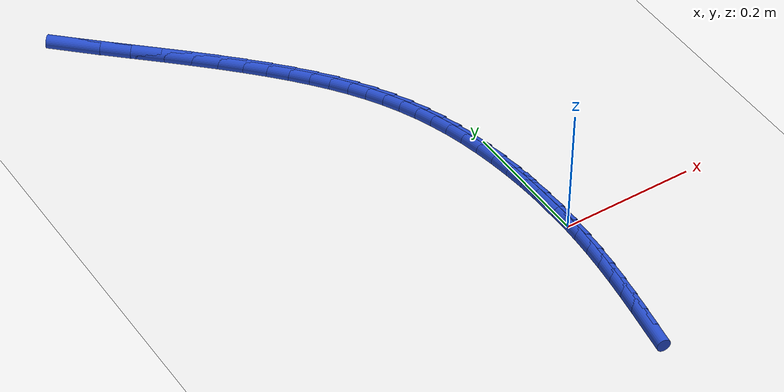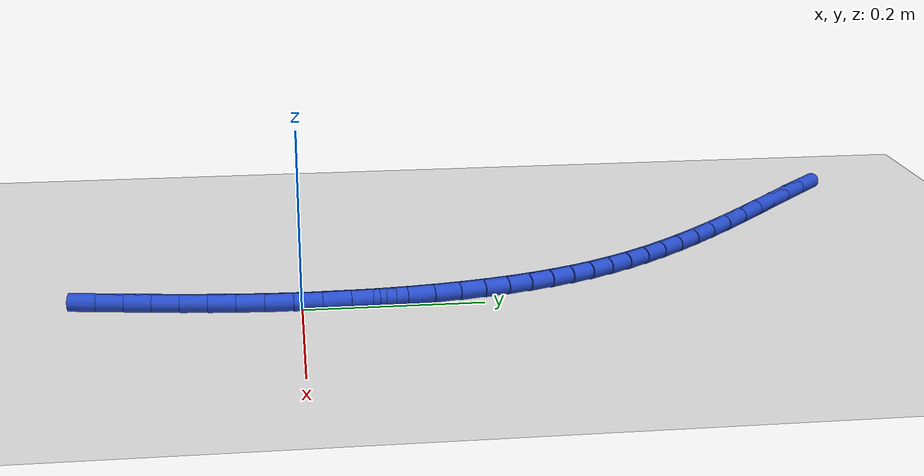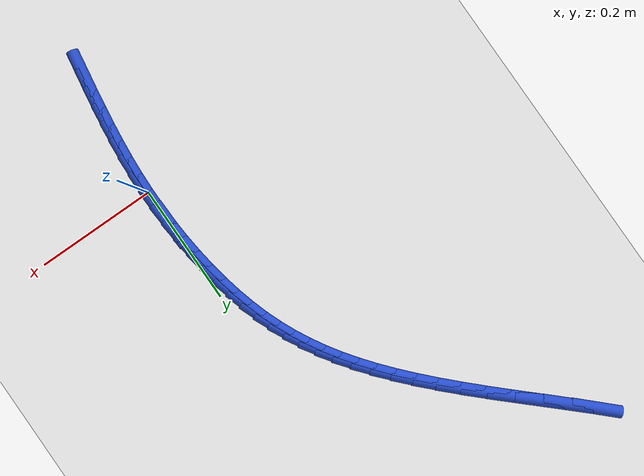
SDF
<sdf version="1.6">
 <world name="default">
  <model name="ground_plane">
   <static>1</static>
   <link name="link">
    <collision name="collision">
     <geometry><plane><normal>0 0 1</normal><size>100 100</size></plane></geometry>
     <surface><friction><ode><mu>100</mu><mu2>50</mu2></ode></friction></surface>
    </collision>
    <visual name="visual">
     <cast_shadows>0</cast_shadows>
     <geometry><plane><normal>0 0 1</normal><size>100 100</size></plane></geometry>
     <material>
      <script><uri>file://media/materials/scripts/gazebo.material</uri><name>Gazebo/WhiteGlow</name></script>
     </material>
    </visual>
   </link>
  </model>
  <model name="line">
   <link name="link_0">
    <pose>1.8648277366750676e-17 -6.938893903907228e-18 0.01 0 1.57 -1.5699351642614259</pose>
    <collision name="collision">
     <geometry><cylinder><radius>0.01</radius><length>0.08</length></cylinder></geometry>
    </collision>
    <visual name="visual">
     <material>
      <script><name>Gazebo/Blue</name><uri>file://media/materials/scripts/gazebo.material</uri></script>
     </material>
     <geometry><cylinder><radius>0.01</radius><length>0.08</length></cylinder></geometry>
    </visual>
   </link>
   <link name="link_1">
    <pose>-2.6558653135063657e-05 0.030840457564657316 0.01 0 1.57 -1.5355909908459235</pose>
    <collision name="collision">
     <geometry><cylinder><radius>0.01</radius><length>0.08</length></cylinder></geometry>
    </collision>
    <visual name="visual">
     <material>
      <script><name>Gazebo/Blue</name><uri>file://media/materials/scripts/gazebo.material</uri></script>
     </material>
     <geometry><cylinder><radius>0.01</radius><length>0.08</length></cylinder></geometry>
    </visual>
   </link>
   <link name="link_2">
    <pose>-0.0011189718829572883 0.061857399885012196 0.01 0 1.57 -1.5012671882661344</pose>
    <collision name="collision">
     <geometry><cylinder><radius>0.01</radius><length>0.08</length></cylinder></geometry>
    </collision>
    <visual name="visual">
     <material>
      <script><name>Gazebo/Blue</name><uri>file://media/materials/scripts/gazebo.material</uri></script>
     </material>
     <geometry><cylinder><radius>0.01</radius><length>0.08</length></cylinder></geometry>
    </visual>
   </link>
   <link name="link_3">
    <pose>-0.0032751421259902946 0.09281844215993389 0.01 0 1.57 -1.4662702780033963</pose>
    <collision name="collision">
     <geometry><cylinder><radius>0.01</radius><length>0.08</length></cylinder></geometry>
    </collision>
    <visual name="visual">
     <material>
      <script><name>Gazebo/Blue</name><uri>file://media/materials/scripts/gazebo.material</uri></script>
     </material>
     <geometry><cylinder><radius>0.01</radius><length>0.08</length></cylinder></geometry>
    </visual>
   </link>
   <link name="link_4">
    <pose>-0.0064929718187577284 0.12349119958829174 0.01 0 1.57 -1.4298760749262927</pose>
    <collision name="collision">
     <geometry><cylinder><radius>0.01</radius><length>0.08</length></cylinder></geometry>
    </collision>
    <visual name="visual">
     <material>
      <script><name>Gazebo/Blue</name><uri>file://media/materials/scripts/gazebo.material</uri></script>
     </material>
     <geometry><cylinder><radius>0.01</radius><length>0.08</length></cylinder></geometry>
    </visual>
   </link>
   <link name="link_5">
    <pose>-0.01077036339778322 0.15364328736895494 0.01 0 1.57 -1.3912860349757676</pose>
    <collision name="collision">
     <geometry><cylinder><radius>0.01</radius><length>0.08</length></cylinder></geometry>
    </collision>
    <visual name="visual">
     <material>
      <script><name>Gazebo/Blue</name><uri>file://media/materials/scripts/gazebo.material</uri></script>
     </material>
     <geometry><cylinder><radius>0.01</radius><length>0.08</length></cylinder></geometry>
    </visual>
   </link>
   <link name="link_6">
    <pose>-0.016105219299590426 0.18304232070079293 0.01 0 1.57 -1.3495768886296635</pose>
    <collision name="collision">
     <geometry><cylinder><radius>0.01</radius><length>0.08</length></cylinder></geometry>
    </collision>
    <visual name="visual">
     <material>
      <script><name>Gazebo/Blue</name><uri>file://media/materials/scripts/gazebo.material</uri></script>
     </material>
     <geometry><cylinder><radius>0.01</radius><length>0.08</length></cylinder></geometry>
    </visual>
   </link>
   <link name="link_7">
    <pose>-0.022495441960702977 0.21145591478267486 0.01 0 1.57 -1.3037687663299813</pose>
    <collision name="collision">
     <geometry><cylinder><radius>0.01</radius><length>0.08</length></cylinder></geometry>
    </collision>
    <visual name="visual">
     <material>
      <script><name>Gazebo/Blue</name><uri>file://media/materials/scripts/gazebo.material</uri></script>
     </material>
     <geometry><cylinder><radius>0.01</radius><length>0.08</length></cylinder></geometry>
    </visual>
   </link>
   <link name="link_8">
    <pose>-0.029947641604828736 0.23869740522114524 0.01 0 1.57 -1.2540484309064965</pose>
    <collision name="collision">
     <geometry><cylinder><radius>0.01</radius><length>0.08</length></cylinder></geometry>
    </collision>
    <visual name="visual">
     <material>
      <script><name>Gazebo/Blue</name><uri>file://media/materials/scripts/gazebo.material</uri></script>
     </material>
     <geometry><cylinder><radius>0.01</radius><length>0.08</length></cylinder></geometry>
    </visual>
   </link>
   <link name="link_9">
    <pose>-0.03851952678452823 0.264848420402216 0.01 0 1.57 -1.201543858057164</pose>
    <collision name="collision">
     <geometry><cylinder><radius>0.01</radius><length>0.08</length></cylinder></geometry>
    </collision>
    <visual name="visual">
     <material>
      <script><name>Gazebo/Blue</name><uri>file://media/materials/scripts/gazebo.material</uri></script>
     </material>
     <geometry><cylinder><radius>0.01</radius><length>0.08</length></cylinder></geometry>
    </visual>
   </link>
   <link name="link_10">
    <pose>-0.04828738614631346 0.2900881438601974 0.01 0 1.57 -1.1475468493103482</pose>
    <collision name="collision">
     <geometry><cylinder><radius>0.01</radius><length>0.08</length></cylinder></geometry>
    </collision>
    <visual name="visual">
     <material>
      <script><name>Gazebo/Blue</name><uri>file://media/materials/scripts/gazebo.material</uri></script>
     </material>
     <geometry><cylinder><radius>0.01</radius><length>0.08</length></cylinder></geometry>
    </visual>
   </link>
   <link name="link_11">
    <pose>-0.059327534840524256 0.31459589828826795 0.01 0 1.57 -1.0935108847659418</pose>
    <collision name="collision">
     <geometry><cylinder><radius>0.01</radius><length>0.08</length></cylinder></geometry>
    </collision>
    <visual name="visual">
     <material>
      <script><name>Gazebo/Blue</name><uri>file://media/materials/scripts/gazebo.material</uri></script>
     </material>
     <geometry><cylinder><radius>0.01</radius><length>0.08</length></cylinder></geometry>
    </visual>
   </link>
   <link name="link_12">
    <pose>-0.07171628801750043 0.3385510063796065 0.01 0 1.57 -1.0409003785213045</pose>
    <collision name="collision">
     <geometry><cylinder><radius>0.01</radius><length>0.08</length></cylinder></geometry>
    </collision>
    <visual name="visual">
     <material>
      <script><name>Gazebo/Blue</name><uri>file://media/materials/scripts/gazebo.material</uri></script>
     </material>
     <geometry><cylinder><radius>0.01</radius><length>0.08</length></cylinder></geometry>
    </visual>
   </link>
   <link name="link_13">
    <pose>-0.08552996082758181 0.3621327908273916 0.01 0 1.57 -0.9910365975665014</pose>
    <collision name="collision">
     <geometry><cylinder><radius>0.01</radius><length>0.08</length></cylinder></geometry>
    </collision>
    <visual name="visual">
     <material>
      <script><name>Gazebo/Blue</name><uri>file://media/materials/scripts/gazebo.material</uri></script>
     </material>
     <geometry><cylinder><radius>0.01</radius><length>0.08</length></cylinder></geometry>
    </visual>
   </link>
   <link name="link_14">
    <pose>-0.10084486842110818 0.38552057432480186 0.01 0 1.57 -0.9449772846791378</pose>
    <collision name="collision">
     <geometry><cylinder><radius>0.01</radius><length>0.08</length></cylinder></geometry>
    </collision>
    <visual name="visual">
     <material>
      <script><name>Gazebo/Blue</name><uri>file://media/materials/scripts/gazebo.material</uri></script>
     </material>
     <geometry><cylinder><radius>0.01</radius><length>0.08</length></cylinder></geometry>
    </visual>
   </link>
   <link name="link_15">
    <pose>-0.11773732594841936 0.4088936795650161 0.01 0 1.57 -0.9034527363246793</pose>
    <collision name="collision">
     <geometry><cylinder><radius>0.01</radius><length>0.08</length></cylinder></geometry>
    </collision>
    <visual name="visual">
     <material>
      <script><name>Gazebo/Blue</name><uri>file://media/materials/scripts/gazebo.material</uri></script>
     </material>
     <geometry><cylinder><radius>0.01</radius><length>0.08</length></cylinder></geometry>
    </visual>
   </link>
   <link name="link_16">
    <pose>-0.13628364855985514 0.43243142924121275 0.01 0 1.57 -0.8668605858514146</pose>
    <collision name="collision">
     <geometry><cylinder><radius>0.01</radius><length>0.08</length></cylinder></geometry>
    </collision>
    <visual name="visual">
     <material>
      <script><name>Gazebo/Blue</name><uri>file://media/materials/scripts/gazebo.material</uri></script>
     </material>
     <geometry><cylinder><radius>0.01</radius><length>0.08</length></cylinder></geometry>
    </visual>
   </link>
   <link name="link_17">
    <pose>-0.1565601514057554 0.4563131460465707 0.01 0 1.57 -0.8353052364749499</pose>
    <collision name="collision">
     <geometry><cylinder><radius>0.01</radius><length>0.08</length></cylinder></geometry>
    </collision>
    <visual name="visual">
     <material>
      <script><name>Gazebo/Blue</name><uri>file://media/materials/scripts/gazebo.material</uri></script>
     </material>
     <geometry><cylinder><radius>0.01</radius><length>0.08</length></cylinder></geometry>
    </visual>
   </link>
   <link name="link_18">
    <pose>-0.17864314963645983 0.48071815267426843 0.01 0 1.57 -0.80866135174899</pose>
    <collision name="collision">
     <geometry><cylinder><radius>0.01</radius><length>0.08</length></cylinder></geometry>
    </collision>
    <visual name="visual">
     <material>
      <script><name>Gazebo/Blue</name><uri>file://media/materials/scripts/gazebo.material</uri></script>
     </material>
     <geometry><cylinder><radius>0.01</radius><length>0.08</length></cylinder></geometry>
    </visual>
   </link>
   <link name="link_19">
    <pose>-0.2026089584023083 0.5058257718174847 0.01 0 1.57 -0.7866429000537736</pose>
    <collision name="collision">
     <geometry><cylinder><radius>0.01</radius><length>0.08</length></cylinder></geometry>
    </collision>
    <visual name="visual">
     <material>
      <script><name>Gazebo/Blue</name><uri>file://media/materials/scripts/gazebo.material</uri></script>
     </material>
     <geometry><cylinder><radius>0.01</radius><length>0.08</length></cylinder></geometry>
    </visual>
   </link>
   <link name="link_20">
    <pose>-0.22853389285364079 0.5318153261693983 0.01 0 1.57 -0.7688655233514287</pose>
    <collision name="collision">
     <geometry><cylinder><radius>0.01</radius><length>0.08</length></cylinder></geometry>
    </collision>
    <visual name="visual">
     <material>
      <script><name>Gazebo/Blue</name><uri>file://media/materials/scripts/gazebo.material</uri></script>
     </material>
     <geometry><cylinder><radius>0.01</radius><length>0.08</length></cylinder></geometry>
    </visual>
   </link>
   <link name="link_21">
    <pose>-0.2564942681407969 0.5588661384231876 0.01 0 1.57 -0.7549696683386229</pose>
    <collision name="collision">
     <geometry><cylinder><radius>0.01</radius><length>0.08</length></cylinder></geometry>
    </collision>
    <visual name="visual">
     <material>
      <script><name>Gazebo/Blue</name><uri>file://media/materials/scripts/gazebo.material</uri></script>
     </material>
     <geometry><cylinder><radius>0.01</radius><length>0.08</length></cylinder></geometry>
    </visual>
   </link>
   <link name="link_22">
    <pose>-0.28655438236655634 0.5871503737709458 0.01 0 1.57 -0.7467585874671544</pose>
    <collision name="collision">
     <geometry><cylinder><radius>0.01</radius><length>0.08</length></cylinder></geometry>
    </collision>
    <visual name="visual">
     <material>
      <script><name>Gazebo/Blue</name><uri>file://media/materials/scripts/gazebo.material</uri></script>
     </material>
     <geometry><cylinder><radius>0.01</radius><length>0.08</length></cylinder></geometry>
    </visual>
   </link>
   <link name="link_23">
    <pose>-0.31836766330626554 0.6165954779926216 0.01 0 1.57 -0.7459757504787383</pose>
    <collision name="collision">
     <geometry><cylinder><radius>0.01</radius><length>0.08</length></cylinder></geometry>
    </collision>
    <visual name="visual">
     <material>
      <script><name>Gazebo/Blue</name><uri>file://media/materials/scripts/gazebo.material</uri></script>
     </material>
     <geometry><cylinder><radius>0.01</radius><length>0.08</length></cylinder></geometry>
    </visual>
   </link>
   <link name="link_24">
    <pose>-0.3510842617424648 0.6468291389114519 0.01 0 1.57 -0.7521501909869619</pose>
    <collision name="collision">
     <geometry><cylinder><radius>0.01</radius><length>0.08</length></cylinder></geometry>
    </collision>
    <visual name="visual">
     <material>
      <script><name>Gazebo/Blue</name><uri>file://media/materials/scripts/gazebo.material</uri></script>
     </material>
     <geometry><cylinder><radius>0.01</radius><length>0.08</length></cylinder></geometry>
    </visual>
   </link>
   <link name="link_25">
    <pose>-0.3838235913286182 0.6774607369391696 0.01 0 1.57 -0.7655263219053338</pose>
    <collision name="collision">
     <geometry><cylinder><radius>0.01</radius><length>0.08</length></cylinder></geometry>
    </collision>
    <visual name="visual">
     <material>
      <script><name>Gazebo/Blue</name><uri>file://media/materials/scripts/gazebo.material</uri></script>
     </material>
     <geometry><cylinder><radius>0.01</radius><length>0.08</length></cylinder></geometry>
    </visual>
   </link>
   <link name="link_283">
    <pose>-0.02274537678651928 -0.21110007245258391 0.01 0 1.57 1.4119199643315508</pose>
    <collision name="collision">
     <geometry><cylinder><radius>0.01</radius><length>0.08</length></cylinder></geometry>
    </collision>
    <visual name="visual">
     <material>
      <script><name>Gazebo/Blue</name><uri>file://media/materials/scripts/gazebo.material</uri></script>
     </material>
     <geometry><cylinder><radius>0.01</radius><length>0.08</length></cylinder></geometry>
    </visual>
   </link>
   <link name="link_284">
    <pose>-0.017876951034661533 -0.18071547568171228 0.01 0 1.57 1.4214664352138782</pose>
    <collision name="collision">
     <geometry><cylinder><radius>0.01</radius><length>0.08</length></cylinder></geometry>
    </collision>
    <visual name="visual">
     <material>
      <script><name>Gazebo/Blue</name><uri>file://media/materials/scripts/gazebo.material</uri></script>
     </material>
     <geometry><cylinder><radius>0.01</radius><length>0.08</length></cylinder></geometry>
    </visual>
   </link>
   <link name="link_285">
    <pose>-0.013345045018553098 -0.1505931103850175 0.01 0 1.57 1.435714370385534</pose>
    <collision name="collision">
     <geometry><cylinder><radius>0.01</radius><length>0.08</length></cylinder></geometry>
    </collision>
    <visual name="visual">
     <material>
      <script><name>Gazebo/Blue</name><uri>file://media/materials/scripts/gazebo.material</uri></script>
     </material>
     <geometry><cylinder><radius>0.01</radius><length>0.08</length></cylinder></geometry>
    </visual>
   </link>
   <link name="link_286">
    <pose>-0.009271564138929662 -0.12062112639066541 0.01 0 1.57 1.4546245698814995</pose>
    <collision name="collision">
     <geometry><cylinder><radius>0.01</radius><length>0.08</length></cylinder></geometry>
    </collision>
    <visual name="visual">
     <material>
      <script><name>Gazebo/Blue</name><uri>file://media/materials/scripts/gazebo.material</uri></script>
     </material>
     <geometry><cylinder><radius>0.01</radius><length>0.08</length></cylinder></geometry>
    </visual>
   </link>
   <link name="link_287">
    <pose>-0.0057784137965269326 -0.09068767352682179 0.01 0 1.57 1.4780536591967681</pose>
    <collision name="collision">
     <geometry><cylinder><radius>0.01</radius><length>0.08</length></cylinder></geometry>
    </collision>
    <visual name="visual">
     <material>
      <script><name>Gazebo/Blue</name><uri>file://media/materials/scripts/gazebo.material</uri></script>
     </material>
     <geometry><cylinder><radius>0.01</radius><length>0.08</length></cylinder></geometry>
    </visual>
   </link>
   <link name="link_288">
    <pose>-0.002987499392080608 -0.06068090162165247 0.01 0 1.57 1.505745917971567</pose>
    <collision name="collision">
     <geometry><cylinder><radius>0.01</radius><length>0.08</length></cylinder></geometry>
    </collision>
    <visual name="visual">
     <material>
      <script><name>Gazebo/Blue</name><uri>file://media/materials/scripts/gazebo.material</uri></script>
     </material>
     <geometry><cylinder><radius>0.01</radius><length>0.08</length></cylinder></geometry>
    </visual>
   </link>
   <link name="link_289">
    <pose>-0.0010207263263263889 -0.030488960503323278 0.01 0 1.57 1.5373302716148576</pose>
    <collision name="collision">
     <geometry><cylinder><radius>0.01</radius><length>0.08</length></cylinder></geometry>
    </collision>
    <visual name="visual">
     <material>
      <script><name>Gazebo/Blue</name><uri>file://media/materials/scripts/gazebo.material</uri></script>
     </material>
     <geometry><cylinder><radius>0.01</radius><length>0.08</length></cylinder></geometry>
    </visual>
   </link>
   <link name="link_290">
    <pose>2.2985086056692694e-17 -1.3877787807814457e-17 0.01 0 1.57 -1.569267877160425</pose>
    <collision name="collision">
     <geometry><cylinder><radius>0.01</radius><length>0.08</length></cylinder></geometry>
    </collision>
    <visual name="visual">
     <material>
      <script><name>Gazebo/Blue</name><uri>file://media/materials/scripts/gazebo.material</uri></script>
     </material>
     <geometry><cylinder><radius>0.01</radius><length>0.08</length></cylinder></geometry>
    </visual>
   </link>
   <link name="link_291">
    <pose>-4.7225813837048665e-05 0.030897830060150507 0.01 0 1.57 -1.5314423572757236</pose>
    <collision name="collision">
     <geometry><cylinder><radius>0.01</radius><length>0.08</length></cylinder></geometry>
    </collision>
    <visual name="visual">
     <material>
      <script><name>Gazebo/Blue</name><uri>file://media/materials/scripts/gazebo.material</uri></script>
     </material>
     <geometry><cylinder><radius>0.01</radius><length>0.08</length></cylinder></geometry>
    </visual>
   </link>
   <link name="link_292">
    <pose>-0.0012843091685733653 0.062316379848965486 0.01 0 1.57 -1.5501897482247664</pose>
    <collision name="collision">
     <geometry><cylinder><radius>0.01</radius><length>0.08</length></cylinder></geometry>
    </collision>
    <visual name="visual">
     <material>
      <script><name>Gazebo/Blue</name><uri>file://media/materials/scripts/gazebo.material</uri></script>
     </material>
     <geometry><cylinder><radius>0.01</radius><length>0.08</length></cylinder></geometry>
    </visual>
   </link>
  </model>
 </world>
</sdf>
